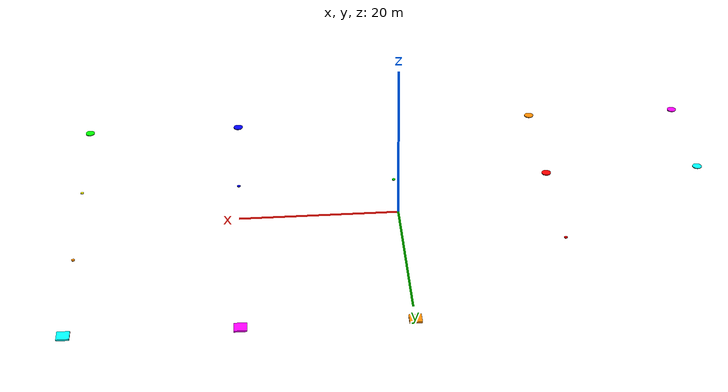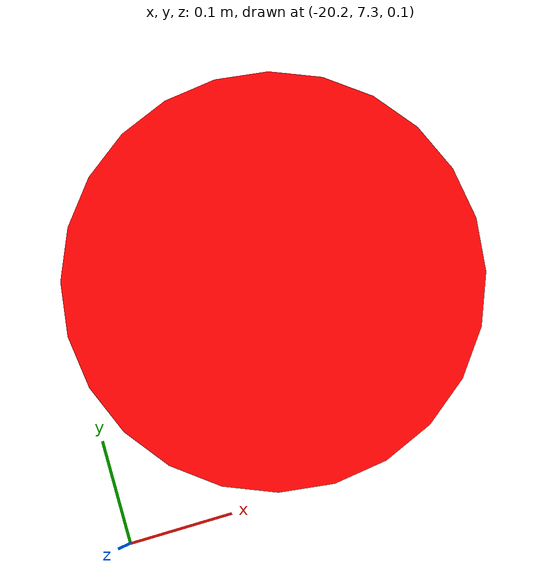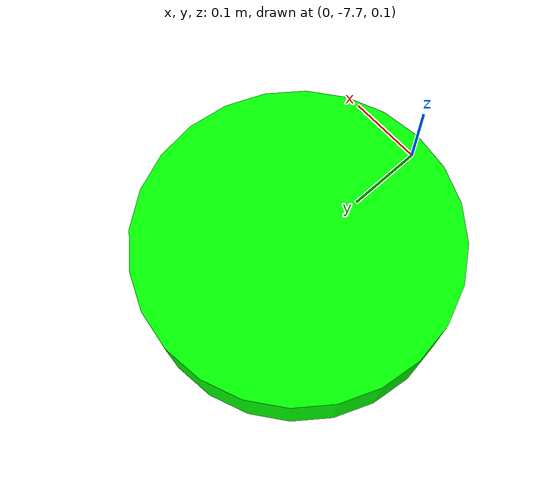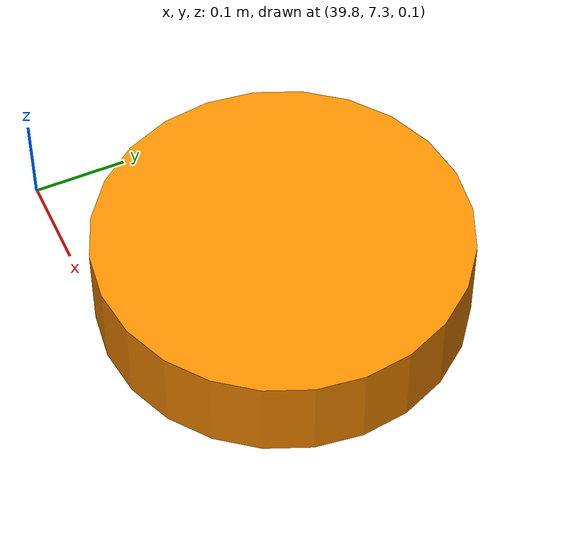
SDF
<sdf version="1.4">
 <world name="default">
  <physics type="ode">
   <max_step_size>0.001</max_step_size>
   <real_time_factor>1</real_time_factor>
   <real_time_update_rate>1000</real_time_update_rate>
   <gravity>0 0 -9.8</gravity>
  </physics>
  <spherical_coordinates>
   <surface_model>EARTH_WGS84</surface_model>
   <latitude_deg>24.4793194</latitude_deg>
   <longitude_deg>54.6105446</longitude_deg>
   <elevation>18</elevation>
   <heading_deg>0</heading_deg>
  </spherical_coordinates>
  <scene><sky><clouds><speed>12</speed></clouds></sky></scene>
  <include><uri>model://sun</uri></include>
  <model name="green_large_cylinder">
   <pose>40 -22.5 0 0 0 0</pose>
   <include><uri>model://cylinder_large_green</uri></include>
  </model>
  <model name="blue_large_cylinder">
   <pose>20 -22.5 0 0 0 0</pose>
   <include><uri>model://cylinder_large_blue</uri></include>
  </model>
  <model name="orange_large_cylinder">
   <pose>-20 -22.5 0 0 0 0</pose>
   <include><uri>model://cylinder_large_orange</uri></include>
  </model>
  <model name="pink_large_cylinder">
   <pose>-40 -22.5 0 0 0 0</pose>
   <include><uri>model://cylinder_large_pink</uri></include>
  </model>
  <model name="cyan_large_cylinder">
   <pose>-40 -7.5 0 0 0 0</pose>
   <include><uri>model://cylinder_large_cyan</uri></include>
  </model>
  <model name="red_large_cylinder">
   <pose>-20 -7.5 0 0 0 0</pose>
   <include><uri>model://cylinder_large_red</uri></include>
  </model>
  <model name="green_small_cylinder">
   <pose>0 -7.5 0 0 0 0</pose>
   <include><uri>model://cylinder_small_green</uri></include>
  </model>
  <model name="blue_small_cylinder">
   <pose>20 -7.5 0 0 0 0</pose>
   <include><uri>model://cylinder_small_blue</uri></include>
  </model>
  <model name="yellow_small_cylinder">
   <pose>40 -7.5 0 0 0 0</pose>
   <include><uri>model://cylinder_small_yellow</uri></include>
  </model>
  <model name="orange_small_cylinder">
   <pose>40  7.5 0 0 0 0</pose>
   <include><uri>model://cylinder_small_orange</uri></include>
  </model>
  <model name="cyan_small_cylinder">
   <pose>0 7.5 0 0 0 0</pose>
   <include><uri>model://cylinder_small_cyan</uri></include>
  </model>
  <model name="red_small_cylinder">
   <pose>-20 7.5 0 0 0 0</pose>
   <include><uri>model://cylinder_small_red</uri></include>
  </model>
  <model name="orange_large_rectangle">
   <pose>0 22.5 0 0 0 0</pose>
   <include><uri>model://rectangle_large_orange</uri></include>
  </model>
  <model name="pink_large_rectangle">
   <pose>20 22.5 0 0 0 0</pose>
   <include><uri>model://rectangle_large_pink</uri></include>
  </model>
  <model name="cyan_large_rectangle">
   <pose>40 22.5 0 0 0 0</pose>
   <include><uri>model://rectangle_large_cyan</uri></include>
  </model>
 </world>
</sdf>

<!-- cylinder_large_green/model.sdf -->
<sdf version='1.4'>
  <model name="small_cylinder_static_green">
    <link name="link" >
      <pose>0 0 0.1 0 0 0</pose>
      <inertial>
        <mass>0.5</mass>
        <inertia>
          <!-- http://answers.gazebosim.org/question/4372/the-inertia-matrix-explained/ -->
          <ixx>0.005914</ixx>    <!-- for a box: ixx = 0.083 * mass * (3*r*r + h*h) -->
          <ixy>0.0</ixy>         <!-- for a box: ixy = 0 -->
          <ixz>0.0</ixz>         <!-- for a box: ixz = 0 -->
          <iyy>0.005914</iyy>    <!-- for a box: iyy = 0.083 * mass * (3*r*r + h*h) -->
          <iyz>0.0</iyz>         <!-- for a box: iyz = 0 -->
          <izz>0.010000</izz>    <!-- for a box: izz = 0.5 * mass * (r*r) -->
        </inertia>
      </inertial>
      <collision name="collision">
        <geometry>
          <cylinder>
            <length>0.2</length>
            <radius>0.1</radius>
          </cylinder>
        </geometry>
      </collision>
      <visual name="visual">
        <geometry>
          <cylinder>
            <length>0.1</length>
            <radius>0.6</radius>
          </cylinder>
        </geometry>
        <material>
          <ambient>0 1 0 1</ambient> <!-- green -->
          <diffuse>0 1 0 1</diffuse>
          <specular>0.1 0.1 0.1 1</specular>
          <emissive>0 0 0 0</emissive>
        </material>
      </visual>
    </link>
  </model>
</sdf>

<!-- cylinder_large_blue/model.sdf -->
<sdf version='1.4'>
  <model name="small_cylinder_static_blue">
    <link name="link" >
      <pose>0 0 0.1 0 0 0</pose>
      <inertial>
        <mass>0.5</mass>
        <inertia>
          <!-- http://answers.gazebosim.org/question/4372/the-inertia-matrix-explained/ -->
          <ixx>0.005914</ixx>    <!-- for a box: ixx = 0.083 * mass * (3*r*r + h*h) -->
          <ixy>0.0</ixy>         <!-- for a box: ixy = 0 -->
          <ixz>0.0</ixz>         <!-- for a box: ixz = 0 -->
          <iyy>0.005914</iyy>    <!-- for a box: iyy = 0.083 * mass * (3*r*r + h*h) -->
          <iyz>0.0</iyz>         <!-- for a box: iyz = 0 -->
          <izz>0.010000</izz>    <!-- for a box: izz = 0.5 * mass * (r*r) -->
        </inertia>
      </inertial>
      <collision name="collision">
        <geometry>
          <cylinder>
            <length>0.4</length>
            <radius>0.2</radius>
          </cylinder>
        </geometry>
      </collision>
      <visual name="visual">
        <geometry>
          <cylinder>
            <length>0.1</length>
            <radius>0.6</radius>
          </cylinder>
        </geometry>
        <material>
          <ambient>0 0 1 1</ambient> <!-- Blue -->
          <diffuse>0 0 1 1</diffuse>
          <specular>0.1 0.1 0.1 1</specular>
          <emissive>0 0 0 0</emissive>
        </material>
      </visual>
    </link>
  </model>
</sdf>

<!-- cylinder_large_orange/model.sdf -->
<sdf version='1.4'>
  <model name="small_cylinder_static_red">
    <link name="link" >
      <pose>0 0 0.1 0 0 0</pose>
      <inertial>
        <mass>0.5</mass>
        <inertia>
          <!-- http://answers.gazebosim.org/question/4372/the-inertia-matrix-explained/ -->
          <ixx>0.005914</ixx>    <!-- for a box: ixx = 0.083 * mass * (3*r*r + h*h) -->
          <ixy>0.0</ixy>         <!-- for a box: ixy = 0 -->
          <ixz>0.0</ixz>         <!-- for a box: ixz = 0 -->
          <iyy>0.005914</iyy>    <!-- for a box: iyy = 0.083 * mass * (3*r*r + h*h) -->
          <iyz>0.0</iyz>         <!-- for a box: iyz = 0 -->
          <izz>0.010000</izz>    <!-- for a box: izz = 0.5 * mass * (r*r) -->
        </inertia>
      </inertial>
      <collision name="collision">
        <geometry>
          <cylinder>
            <length>0.2</length>
            <radius>0.1</radius>
          </cylinder>
        </geometry>
      </collision>
      <visual name="visual">
        <geometry>
          <cylinder>
            <length>0.1</length>
            <radius>0.6</radius>
          </cylinder>
        </geometry>
        <material>
           <ambient>1 0.549 0 1</ambient> <!-- dark Orange -->
          <diffuse>1 0.549 0 1</diffuse>
          <specular>0.1 0.1 0.1 1</specular>
          <emissive>0 0 0 0</emissive>
        </material>
      </visual>
    </link>
  </model>
</sdf>

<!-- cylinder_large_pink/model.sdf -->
<sdf version='1.4'>
  <model name="small_cylinder_static_green">
    <link name="link" >
      <pose>0 0 0.1 0 0 0</pose>
      <inertial>
        <mass>0.5</mass>
        <inertia>
          <!-- http://answers.gazebosim.org/question/4372/the-inertia-matrix-explained/ -->
          <ixx>0.005914</ixx>    <!-- for a box: ixx = 0.083 * mass * (3*r*r + h*h) -->
          <ixy>0.0</ixy>         <!-- for a box: ixy = 0 -->
          <ixz>0.0</ixz>         <!-- for a box: ixz = 0 -->
          <iyy>0.005914</iyy>    <!-- for a box: iyy = 0.083 * mass * (3*r*r + h*h) -->
          <iyz>0.0</iyz>         <!-- for a box: iyz = 0 -->
          <izz>0.010000</izz>    <!-- for a box: izz = 0.5 * mass * (r*r) -->
        </inertia>
      </inertial>
      <collision name="collision">
        <geometry>
          <cylinder>
            <length>0.2</length>
            <radius>0.1</radius>
          </cylinder>
        </geometry>
      </collision>
      <visual name="visual">
        <geometry>
          <cylinder>
            <length>0.1</length>
            <radius>0.6</radius>
          </cylinder>
        </geometry>
        <material>
          <ambient>1 0 1 1</ambient> <!-- pink -->
          <diffuse>1 0 1 1</diffuse>
          <specular>0.1 0.1 0.1 1</specular>
          <emissive>0 0 0 0</emissive>
        </material>
      </visual>
    </link>
  </model>
</sdf>

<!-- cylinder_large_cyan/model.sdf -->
<sdf version='1.4'>
  <model name="small_cylinder_static_blue">
    <link name="link" >
      <pose>0 0 0.1 0 0 0</pose>
      <inertial>
        <mass>0.5</mass>
        <inertia>
          <!-- http://answers.gazebosim.org/question/4372/the-inertia-matrix-explained/ -->
          <ixx>0.005914</ixx>    <!-- for a box: ixx = 0.083 * mass * (3*r*r + h*h) -->
          <ixy>0.0</ixy>         <!-- for a box: ixy = 0 -->
          <ixz>0.0</ixz>         <!-- for a box: ixz = 0 -->
          <iyy>0.005914</iyy>    <!-- for a box: iyy = 0.083 * mass * (3*r*r + h*h) -->
          <iyz>0.0</iyz>         <!-- for a box: iyz = 0 -->
          <izz>0.010000</izz>    <!-- for a box: izz = 0.5 * mass * (r*r) -->
        </inertia>
      </inertial>
      <collision name="collision">
        <geometry>
          <cylinder>
            <length>0.4</length>
            <radius>0.2</radius>
          </cylinder>
        </geometry>
      </collision>
      <visual name="visual">
        <geometry>
          <cylinder>
            <length>0.1</length>
            <radius>0.6</radius>
          </cylinder>
        </geometry>
        <material>
         <ambient>0 1 1 1</ambient> <!-- cyan -->
          <diffuse>0 1 1 1</diffuse>
          <specular>0.1 0.1 0.1 1</specular>
          <emissive>0 0 0 0</emissive>
        </material>
      </visual>
    </link>
  </model>
</sdf>

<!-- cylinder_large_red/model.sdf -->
<sdf version='1.4'>
  <model name="small_cylinder_static_blue">
    <link name="link" >
      <pose>0 0 0.1 0 0 0</pose>
      <inertial>
        <mass>0.5</mass>
        <inertia>
          <!-- http://answers.gazebosim.org/question/4372/the-inertia-matrix-explained/ -->
          <ixx>0.005914</ixx>    <!-- for a box: ixx = 0.083 * mass * (3*r*r + h*h) -->
          <ixy>0.0</ixy>         <!-- for a box: ixy = 0 -->
          <ixz>0.0</ixz>         <!-- for a box: ixz = 0 -->
          <iyy>0.005914</iyy>    <!-- for a box: iyy = 0.083 * mass * (3*r*r + h*h) -->
          <iyz>0.0</iyz>         <!-- for a box: iyz = 0 -->
          <izz>0.010000</izz>    <!-- for a box: izz = 0.5 * mass * (r*r) -->
        </inertia>
      </inertial>
      <collision name="collision">
        <geometry>
          <cylinder>
            <length>0.4</length>
            <radius>0.2</radius>
          </cylinder>
        </geometry>
      </collision>
      <visual name="visual">
        <geometry>
          <cylinder>
            <length>0.1</length>
            <radius>0.6</radius>
          </cylinder>
        </geometry>
        <material>
         <ambient>1 0 0 1</ambient> <!-- cyan -->
          <diffuse>1 0 0 1</diffuse>
          <specular>0.1 0.1 0.1 1</specular>
          <emissive>0 0 0 0</emissive>
        </material>
      </visual>
    </link>
  </model>
</sdf>

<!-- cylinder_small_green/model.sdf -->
<sdf version='1.4'>
  <model name="small_cylinder_static_green">
    <link name="link" >
      <pose>0 0 0.1 0 0 0</pose>
      <inertial>
        <mass>0.5</mass>
        <inertia>
          <!-- http://answers.gazebosim.org/question/4372/the-inertia-matrix-explained/ -->
          <ixx>0.005914</ixx>    <!-- for a box: ixx = 0.083 * mass * (3*r*r + h*h) -->
          <ixy>0.0</ixy>         <!-- for a box: ixy = 0 -->
          <ixz>0.0</ixz>         <!-- for a box: ixz = 0 -->
          <iyy>0.005914</iyy>    <!-- for a box: iyy = 0.083 * mass * (3*r*r + h*h) -->
          <iyz>0.0</iyz>         <!-- for a box: iyz = 0 -->
          <izz>0.010000</izz>    <!-- for a box: izz = 0.5 * mass * (r*r) -->
        </inertia>
      </inertial>
      <collision name="collision">
        <geometry>
          <cylinder>
            <length>0.2</length>
            <radius>0.1</radius>
          </cylinder>
        </geometry>
      </collision>
      <visual name="visual">
        <geometry>
          <cylinder>
            <length>0.1</length>
            <radius>0.2</radius>
          </cylinder>
        </geometry>
        <material>
          <ambient>0 1 0 1</ambient> <!-- green -->
          <diffuse>0 1 0 1</diffuse>
          <specular>0.1 0.1 0.1 1</specular>
          <emissive>0 0 0 0</emissive>
        </material>
      </visual>
    </link>
  </model>
</sdf>

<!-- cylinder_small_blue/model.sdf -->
<sdf version='1.4'>
  <model name="small_cylinder_static_blue">
    <link name="link" >
      <pose>0 0 0.1 0 0 0</pose>
      <inertial>
        <mass>0.5</mass>
        <inertia>
          <!-- http://answers.gazebosim.org/question/4372/the-inertia-matrix-explained/ -->
          <ixx>0.005914</ixx>    <!-- for a box: ixx = 0.083 * mass * (3*r*r + h*h) -->
          <ixy>0.0</ixy>         <!-- for a box: ixy = 0 -->
          <ixz>0.0</ixz>         <!-- for a box: ixz = 0 -->
          <iyy>0.005914</iyy>    <!-- for a box: iyy = 0.083 * mass * (3*r*r + h*h) -->
          <iyz>0.0</iyz>         <!-- for a box: iyz = 0 -->
          <izz>0.010000</izz>    <!-- for a box: izz = 0.5 * mass * (r*r) -->
        </inertia>
      </inertial>
      <collision name="collision">
        <geometry>
          <cylinder>
            <length>0.2</length>
            <radius>0.1</radius>
          </cylinder>
        </geometry>
      </collision>
      <visual name="visual">
        <geometry>
          <cylinder>
            <length>0.1</length>
            <radius>0.2</radius>
          </cylinder>
        </geometry>
        <material>
          <ambient>0 0 1 1</ambient> <!-- Blue -->
          <diffuse>0 0 1 1</diffuse>
          <specular>0.1 0.1 0.1 1</specular>
          <emissive>0 0 0 0</emissive>
        </material>
      </visual>
    </link>
  </model>
</sdf>

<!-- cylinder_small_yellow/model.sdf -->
<sdf version='1.4'>
  <model name="small_cylinder_static_green">
    <link name="link" >
      <pose>0 0 0.1 0 0 0</pose>
      <inertial>
        <mass>0.5</mass>
        <inertia>
          <!-- http://answers.gazebosim.org/question/4372/the-inertia-matrix-explained/ -->
          <ixx>0.005914</ixx>    <!-- for a box: ixx = 0.083 * mass * (3*r*r + h*h) -->
          <ixy>0.0</ixy>         <!-- for a box: ixy = 0 -->
          <ixz>0.0</ixz>         <!-- for a box: ixz = 0 -->
          <iyy>0.005914</iyy>    <!-- for a box: iyy = 0.083 * mass * (3*r*r + h*h) -->
          <iyz>0.0</iyz>         <!-- for a box: iyz = 0 -->
          <izz>0.010000</izz>    <!-- for a box: izz = 0.5 * mass * (r*r) -->
        </inertia>
      </inertial>
      <collision name="collision">
        <geometry>
          <cylinder>
            <length>0.2</length>
            <radius>0.1</radius>
          </cylinder>
        </geometry>
      </collision>
      <visual name="visual">
        <geometry>
          <cylinder>
            <length>0.1</length>
            <radius>0.2</radius>
          </cylinder>
        </geometry>
        <material>
          <ambient>1 1 0 1</ambient> <!-- yellow -->
          <diffuse>1 1 0 1</diffuse>
          <specular>0.1 0.1 0.1 1</specular>
          <emissive>0 0 0 0</emissive>
        </material>
      </visual>
    </link>
  </model>
</sdf>

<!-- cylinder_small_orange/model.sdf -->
<sdf version='1.4'>
  <model name="small_cylinder_static_red">
    <link name="link" >
      <pose>0 0 0.1 0 0 0</pose>
      <inertial>
        <mass>0.5</mass>
        <inertia>
          <!-- http://answers.gazebosim.org/question/4372/the-inertia-matrix-explained/ -->
          <ixx>0.005914</ixx>    <!-- for a box: ixx = 0.083 * mass * (3*r*r + h*h) -->
          <ixy>0.0</ixy>         <!-- for a box: ixy = 0 -->
          <ixz>0.0</ixz>         <!-- for a box: ixz = 0 -->
          <iyy>0.005914</iyy>    <!-- for a box: iyy = 0.083 * mass * (3*r*r + h*h) -->
          <iyz>0.0</iyz>         <!-- for a box: iyz = 0 -->
          <izz>0.010000</izz>    <!-- for a box: izz = 0.5 * mass * (r*r) -->
        </inertia>
      </inertial>
      <collision name="collision">
        <geometry>
          <cylinder>
            <length>0.2</length>
            <radius>0.1</radius>
          </cylinder>
        </geometry>
      </collision>
      <visual name="visual">
        <geometry>
          <cylinder>
            <length>0.1</length>
            <radius>0.2</radius>
          </cylinder>
        </geometry>
        <material>
           <ambient>1 0.549 0 1</ambient> <!-- dark Orange -->
          <diffuse>1 0.549 0 1</diffuse>
          <specular>0.1 0.1 0.1 1</specular>
          <emissive>0 0 0 0</emissive>
        </material>
      </visual>
    </link>
  </model>
</sdf>

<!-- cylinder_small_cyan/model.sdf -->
<sdf version='1.4'>
  <model name="small_cylinder_static_green">
    <link name="link" >
      <pose>0 0 0.1 0 0 0</pose>
      <inertial>
        <mass>0.5</mass>
        <inertia>
          <!-- http://answers.gazebosim.org/question/4372/the-inertia-matrix-explained/ -->
          <ixx>0.005914</ixx>    <!-- for a box: ixx = 0.083 * mass * (3*r*r + h*h) -->
          <ixy>0.0</ixy>         <!-- for a box: ixy = 0 -->
          <ixz>0.0</ixz>         <!-- for a box: ixz = 0 -->
          <iyy>0.005914</iyy>    <!-- for a box: iyy = 0.083 * mass * (3*r*r + h*h) -->
          <iyz>0.0</iyz>         <!-- for a box: iyz = 0 -->
          <izz>0.010000</izz>    <!-- for a box: izz = 0.5 * mass * (r*r) -->
        </inertia>
      </inertial>
      <collision name="collision">
        <geometry>
          <cylinder>
            <length>0.2</length>
            <radius>0.1</radius>
          </cylinder>
        </geometry>
      </collision>
      <visual name="visual">
        <geometry>
          <cylinder>
            <length>0.1</length>
            <radius>0.2</radius>
          </cylinder>
        </geometry>
        <material>
          <ambient>0 1 1 1</ambient> <!-- pink -->
          <diffuse>0 1 1 1</diffuse>
          <specular>0.1 0.1 0.1 1</specular>
          <emissive>0 0 0 0</emissive>
        </material>
      </visual>
    </link>
  </model>
</sdf>

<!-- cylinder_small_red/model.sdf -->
<sdf version='1.4'>
  <model name="small_cylinder_static_green">
    <link name="link" >
      <pose>0 0 0.1 0 0 0</pose>
      <inertial>
        <mass>0.5</mass>
        <inertia>
          <!-- http://answers.gazebosim.org/question/4372/the-inertia-matrix-explained/ -->
          <ixx>0.005914</ixx>    <!-- for a box: ixx = 0.083 * mass * (3*r*r + h*h) -->
          <ixy>0.0</ixy>         <!-- for a box: ixy = 0 -->
          <ixz>0.0</ixz>         <!-- for a box: ixz = 0 -->
          <iyy>0.005914</iyy>    <!-- for a box: iyy = 0.083 * mass * (3*r*r + h*h) -->
          <iyz>0.0</iyz>         <!-- for a box: iyz = 0 -->
          <izz>0.010000</izz>    <!-- for a box: izz = 0.5 * mass * (r*r) -->
        </inertia>
      </inertial>
      <collision name="collision">
        <geometry>
          <cylinder>
            <length>0.2</length>
            <radius>0.1</radius>
          </cylinder>
        </geometry>
      </collision>
      <visual name="visual">
        <geometry>
          <cylinder>
            <length>0.1</length>
            <radius>0.2</radius>
          </cylinder>
        </geometry>
        <material>
          <ambient>1 0 0 1</ambient> <!-- yellow -->
          <diffuse>1 0 0 1</diffuse>
          <specular>0.1 0.1 0.1 1</specular>
          <emissive>0 0 0 0</emissive>
        </material>
      </visual>
    </link>
  </model>
</sdf>

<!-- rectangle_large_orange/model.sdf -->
<sdf version='1.4'>
  <model name="small_rectangle">
    <link name="link" >
      <pose>0 0 0.1 0 0 0</pose>
      <inertial>
        <mass>0.5</mass>
        <inertia>
          <!-- http://answers.gazebosim.org/question/4372/the-inertia-matrix-explained/ -->
          <ixx>0.005395</ixx>   <!-- for a box: ixx = 0.083 * mass * (y*y + z*z) -->
          <ixy>0.0</ixy>        <!-- for a box: ixy = 0 -->
          <ixz>0.0</ixz>        <!-- for a box: ixz = 0 -->
          <iyy>0.005395</iyy>   <!-- for a box: iyy = 0.083 * mass * (x*x + z*z) -->
          <iyz>0.0</iyz>        <!-- for a box: iyz = 0 -->
          <izz>0.007470</izz>   <!-- for a box: izz = 0.083 * mass * (x*x + y*y) -->
        </inertia>
      </inertial>
      <collision name="collision">
        <geometry>
          <box>
            <size>0.3 0.3 0.2</size>
          </box>
        </geometry>
      </collision>
      <visual name="visual">
        <geometry>
          <box>
            <size>1.5 1.5 0.2</size>
          </box>
        </geometry>
        <material>
          <ambient>1 0.549 0 1</ambient> <!-- dark Orange -->
          <diffuse>1 0.549 0 1</diffuse>
          <specular>0.1 0.1 0.1 1</specular>
          <emissive>0 0 0 0</emissive>
        </material>
      </visual>
    </link>
  </model>
</sdf>

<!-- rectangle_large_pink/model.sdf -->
<sdf version='1.4'>
  <model name="small_rectangle">
    <link name="link" >
      <pose>0 0 0.1 0 0 0</pose>
      <inertial>
        <mass>0.5</mass>
        <inertia>
          <!-- http://answers.gazebosim.org/question/4372/the-inertia-matrix-explained/ -->
          <ixx>0.005395</ixx>   <!-- for a box: ixx = 0.083 * mass * (y*y + z*z) -->
          <ixy>0.0</ixy>        <!-- for a box: ixy = 0 -->
          <ixz>0.0</ixz>        <!-- for a box: ixz = 0 -->
          <iyy>0.005395</iyy>   <!-- for a box: iyy = 0.083 * mass * (x*x + z*z) -->
          <iyz>0.0</iyz>        <!-- for a box: iyz = 0 -->
          <izz>0.007470</izz>   <!-- for a box: izz = 0.083 * mass * (x*x + y*y) -->
        </inertia>
      </inertial>
      <collision name="collision">
        <geometry>
          <box>
            <size>0.3 0.3 0.2</size>
          </box>
        </geometry>
      </collision>
      <visual name="visual">
        <geometry>
          <box>
            <size>1.5 1.5 0.2</size>
          </box>
        </geometry>
        <material>
         <ambient>1 0 1 1</ambient> <!-- pink -->
          <diffuse>1 0 1 1</diffuse>
          <specular>0.1 0.1 0.1 1</specular>
          <emissive>0 0 0 0</emissive>
        </material>
      </visual>
    </link>
  </model>
</sdf>

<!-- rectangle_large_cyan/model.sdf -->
<sdf version='1.4'>
  <model name="small_rectangle">
    <link name="link" >
      <pose>0 0 0.1 0 0 0</pose>
      <inertial>
        <mass>0.5</mass>
        <inertia>
          <!-- http://answers.gazebosim.org/question/4372/the-inertia-matrix-explained/ -->
          <ixx>0.005395</ixx>   <!-- for a box: ixx = 0.083 * mass * (y*y + z*z) -->
          <ixy>0.0</ixy>        <!-- for a box: ixy = 0 -->
          <ixz>0.0</ixz>        <!-- for a box: ixz = 0 -->
          <iyy>0.005395</iyy>   <!-- for a box: iyy = 0.083 * mass * (x*x + z*z) -->
          <iyz>0.0</iyz>        <!-- for a box: iyz = 0 -->
          <izz>0.007470</izz>   <!-- for a box: izz = 0.083 * mass * (x*x + y*y) -->
        </inertia>
      </inertial>
      <collision name="collision">
        <geometry>
          <box>
            <size>0.3 0.3 0.2</size>
          </box>
        </geometry>
      </collision>
      <visual name="visual">
        <geometry>
          <box>
            <size>1.5 1.5 0.2</size>
          </box>
        </geometry>
        <material>
          <ambient>0 1 1 1</ambient> <!-- Royal Blue -->
          <diffuse>0 1 1 1</diffuse>
          <specular>0.1 0.1 0.1 1</specular>
          <emissive>0 0 0 0</emissive>
        </material>
      </visual>
    </link>
  </model>
</sdf>
